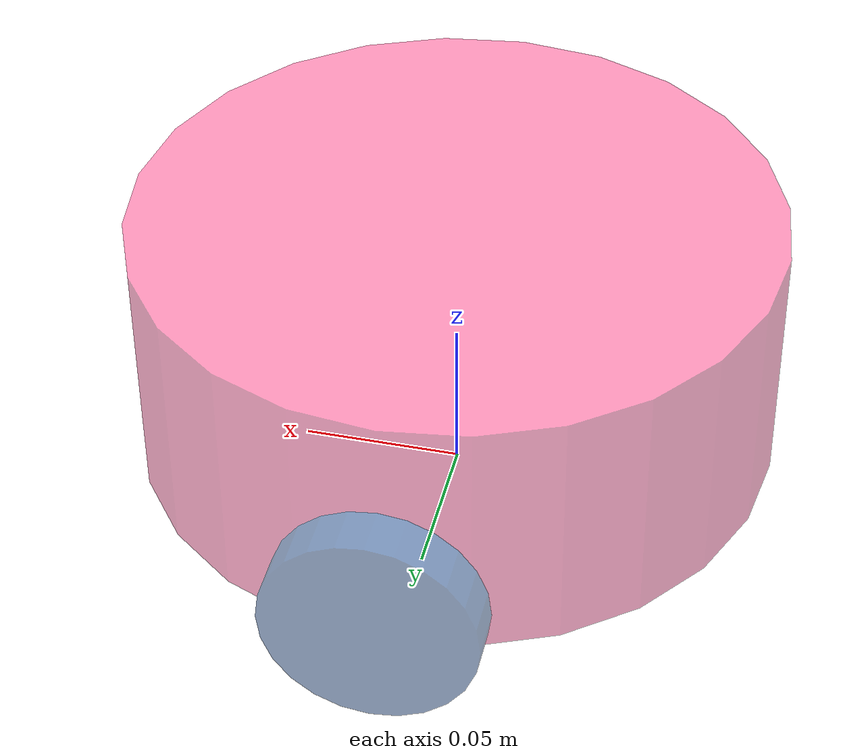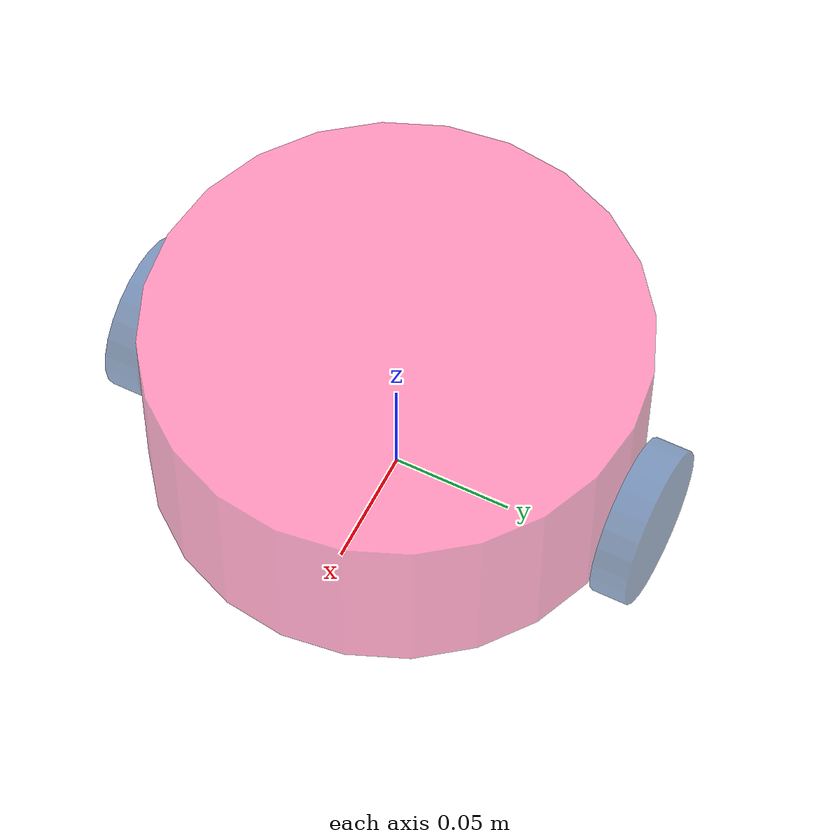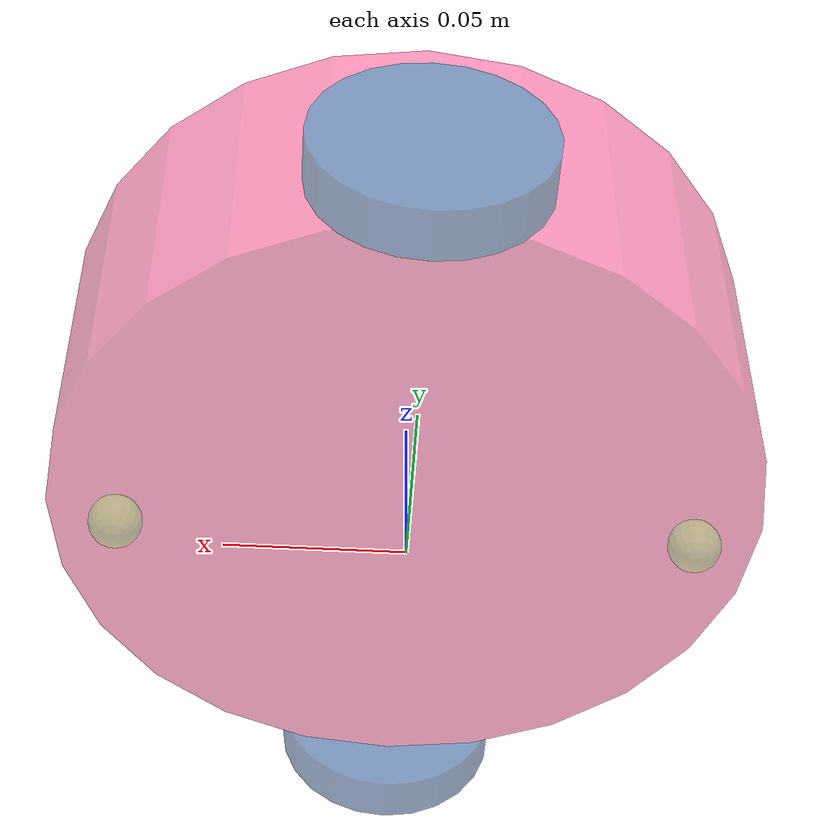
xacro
<robot name="car"  xmlns:xacro="http://wiki.ros.org/xacro">
    <xacro:property name="foot_print_value" value="0.0001" />
    <xacro:property name="base_radiu" value="0.1" />
    <xacro:property name="base_length" value="0.08" />
    <xacro:property name="base_mass" value="2" />
    <xacro:property name="base_ground" value="0.015" />
    <xacro:property name="base_joint_z" value="${base_length / 2 + base_ground}" />

    <link name="base_footprint">
        <visual>
            <geometry>
                <box size="${foot_print_value} ${foot_print_value} ${foot_print_value}" />
            </geometry>
            <origin xyz="0 0 0" rpy="0 0 0"/>
            <material name="color_base">
                <color rgba="1 0.3 1 0.5"/>
            </material>
        </visual>
    </link>

    <link name="base_link">
        <visual>
            <geometry>
                <cylinder radius="${base_radiu}" length="${base_length}" />
            </geometry>
            <origin xyz="0 0 0.0" rpy="0 0 0"/>
            <material name="color_base">
                <color rgba="1 0.2 0.5 0.5"/>
            </material>
        </visual>
        <collision>
            <geometry>
                <cylinder radius="${base_radiu}" length="${base_length}" />
            </geometry>
            <origin xyz="0 0 0.0" rpy="0 0 0"/>
        </collision>
        <cylinder_inertial_matrix m="${base_mass}" r="${base_radiu}" h="${base_length}"/>
    </link>
    <gazebo reference="base_link">
        <material>Gazebo/Yellow</material>
    </gazebo>

    <joint name="base_footprint2base" type="fixed">
        <parent link="base_footprint"/>
        <child link="base_link" />
        <origin xyz="0.0 0 ${base_joint_z}" rpy="0 0 0"/>
    </joint>

    <xacro:property name="wheel_radius" value="0.0325" />
    <xacro:property name="wheel_width" value="0.015" />
    <xacro:property name="wheel_mass" value="0.05" />
    <xacro:property name="wheel_base" value="${-base_length / 2 - base_ground + wheel_radius}" />
    <xacro:property name="PI" value="3.1415927" />

    <xacro:macro name="wheel_func" params="wheel_name flag" >
        <link name="${wheel_name}">
            <visual>
                <geometry>
                    <cylinder radius="${wheel_radius}" length="${wheel_width}" />
                </geometry>
                <origin xyz="0 0 0" rpy="${PI/2} 0 0"/>
                <material name="color_base">
                    <color rgba="0 0.2 0.5 0.5"/>
                </material>
            </visual>
            <collision>
                <geometry>
                    <cylinder radius="${wheel_radius}" length="${wheel_width}" />
                </geometry>
                <origin xyz="0 0 0" rpy="${PI/2} 0 0"/>
            </collision>
            <xacro:cylinder_inertial_matrix m="${wheel_mass}" r="${wheel_radius}" h="${wheel_width}"/>
        </link>
        <gazebo reference="${wheel_name}">
            <material>Gazebo/Red</material>
        </gazebo>

        <joint name="${wheel_name}" type="continuous">
            <parent link="base_link"/>
            <child link="${wheel_name}" />
            <origin xyz="0.0 ${flag * (base_radiu+wheel_width/2)} ${(-base_ground+wheel_radius - base_length/2)}" rpy="0 0 0"/>
            <axis xyz="0 1 0" />
        </joint>
    </xacro:macro>

    <xacro:property name="small_radius" value="0.0075" />
    <xacro:property name="small_mass" value="0.01" />
    <xacro:property name="distance" value="${base_length/2+small_radius}" />

    <xacro:macro name="move" params="wheel_name flag">
        <link name="${wheel_name}">
            <visual>
                <geometry>
                    <sphere radius="${small_radius}" />
                </geometry>
                <origin xyz="0 0 0" rpy="0 0 0"/>
                <material name="color_base">
                    <color rgba="0.5 0.4 0.1 0.5"/>
                </material>
            </visual>
            <collision>
                <geometry>
                    <sphere radius="${small_radius}" />
                </geometry>
                <origin xyz="0 0 0" rpy="0 0 0"/>
            </collision>
            <xacro:sphere_inertial_matrix m="${small_mass}" r="${small_radius}"/>
        </link>
        <gazebo reference="${wheel_name}">
            <material>Gazebo/Red</material>
        </gazebo>

        <joint name="${wheel_name}tobase" type="continuous">
            <parent link="base_link"/>
            <child link="${wheel_name}" />
            <origin xyz="${flag*0.08} 0.0 -${distance}" rpy="0 0 0"/>
            <axis xyz="1 1 1" />
        </joint>
    </xacro:macro>

    <xacro:wheel_func wheel_name="left" flag="1" />
    <xacro:wheel_func wheel_name="right" flag="-1" />
    <xacro:move wheel_name="left_move"  flag="1" />
    <xacro:move wheel_name="right_move"  flag="-1" />

</robot>
